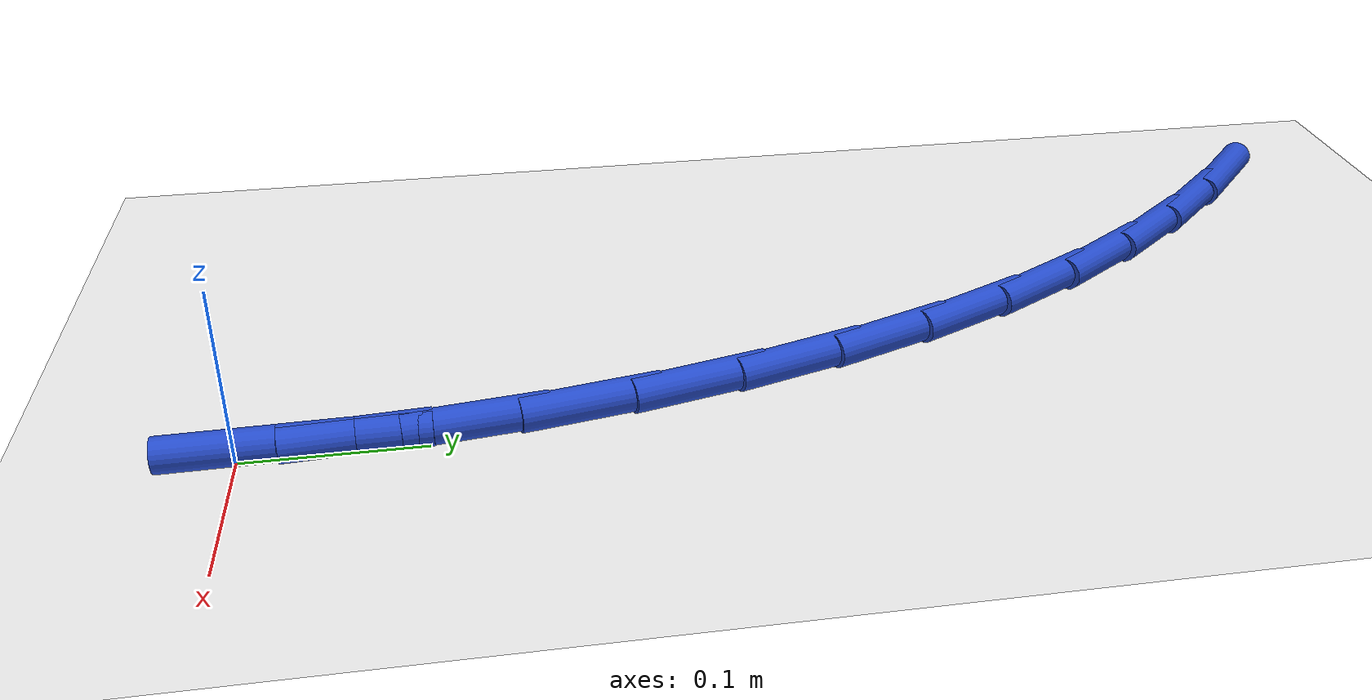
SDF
<sdf version="1.6">
 <world name="default">
  <model name="ground_plane">
   <static>1</static>
   <link name="link">
    <collision name="collision">
     <geometry><plane><normal>0 0 1</normal><size>100 100</size></plane></geometry>
     <surface><friction><ode><mu>100</mu><mu2>50</mu2></ode></friction></surface>
    </collision>
    <visual name="visual">
     <cast_shadows>0</cast_shadows>
     <geometry><plane><normal>0 0 1</normal><size>100 100</size></plane></geometry>
     <material>
      <script><uri>file://media/materials/scripts/gazebo.material</uri><name>Gazebo/WhiteGlow</name></script>
     </material>
    </visual>
   </link>
  </model>
  <model name="line">
   <link name="link_1">
    <pose>-0.001391001020907213 0.06254942778486844 0.01 0 1.57 -1.4908306305741112</pose>
    <collision name="collision">
     <geometry><cylinder><radius>0.01</radius><length>0.08</length></cylinder></geometry>
    </collision>
    <visual name="visual">
     <material>
      <script><name>Gazebo/Blue</name><uri>file://media/materials/scripts/gazebo.material</uri></script>
     </material>
     <geometry><cylinder><radius>0.01</radius><length>0.08</length></cylinder></geometry>
    </visual>
   </link>
   <link name="link_2">
    <pose>-0.006388080808135755 0.1249064656518266 0.01 0 1.57 -1.4316989416057089</pose>
    <collision name="collision">
     <geometry><cylinder><radius>0.01</radius><length>0.08</length></cylinder></geometry>
    </collision>
    <visual name="visual">
     <material>
      <script><name>Gazebo/Blue</name><uri>file://media/materials/scripts/gazebo.material</uri></script>
     </material>
     <geometry><cylinder><radius>0.01</radius><length>0.08</length></cylinder></geometry>
    </visual>
   </link>
   <link name="link_3">
    <pose>-0.015036185880049104 0.18667799525161344 0.01 0 1.57 -1.3704685711165452</pose>
    <collision name="collision">
     <geometry><cylinder><radius>0.01</radius><length>0.08</length></cylinder></geometry>
    </collision>
    <visual name="visual">
     <material>
      <script><name>Gazebo/Blue</name><uri>file://media/materials/scripts/gazebo.material</uri></script>
     </material>
     <geometry><cylinder><radius>0.01</radius><length>0.08</length></cylinder></geometry>
    </visual>
   </link>
   <link name="link_4">
    <pose>-0.027380262755010727 0.2474708982349676 0.01 0 1.57 -1.3064370665634912</pose>
    <collision name="collision">
     <geometry><cylinder><radius>0.01</radius><length>0.08</length></cylinder></geometry>
    </collision>
    <visual name="visual">
     <material>
      <script><name>Gazebo/Blue</name><uri>file://media/materials/scripts/gazebo.material</uri></script>
     </material>
     <geometry><cylinder><radius>0.01</radius><length>0.08</length></cylinder></geometry>
    </visual>
   </link>
   <link name="link_5">
    <pose>-0.04346525795138412 0.3068920562526279 0.01 0 1.57 -1.2389015030759278</pose>
    <collision name="collision">
     <geometry><cylinder><radius>0.01</radius><length>0.08</length></cylinder></geometry>
    </collision>
    <visual name="visual">
     <material>
      <script><name>Gazebo/Blue</name><uri>file://media/materials/scripts/gazebo.material</uri></script>
     </material>
     <geometry><cylinder><radius>0.01</radius><length>0.08</length></cylinder></geometry>
    </visual>
   </link>
   <link name="link_6">
    <pose>-0.06333611798753269 0.36454835095533283 0.01 0 1.57 -1.1671735737231936</pose>
    <collision name="collision">
     <geometry><cylinder><radius>0.01</radius><length>0.08</length></cylinder></geometry>
    </collision>
    <visual name="visual">
     <material>
      <script><name>Gazebo/Blue</name><uri>file://media/materials/scripts/gazebo.material</uri></script>
     </material>
     <geometry><cylinder><radius>0.01</radius><length>0.08</length></cylinder></geometry>
    </visual>
   </link>
   <link name="link_7">
    <pose>-0.08703778938181994 0.4200466639938213 0.01 0 1.57 -1.0906100683230515</pose>
    <collision name="collision">
     <geometry><cylinder><radius>0.01</radius><length>0.08</length></cylinder></geometry>
    </collision>
    <visual name="visual">
     <material>
      <script><name>Gazebo/Blue</name><uri>file://media/materials/scripts/gazebo.material</uri></script>
     </material>
     <geometry><cylinder><radius>0.01</radius><length>0.08</length></cylinder></geometry>
    </visual>
   </link>
   <link name="link_8">
    <pose>-0.11461521865260935 0.47299387701883194 0.01 0 1.57 -1.008663314355127</pose>
    <collision name="collision">
     <geometry><cylinder><radius>0.01</radius><length>0.08</length></cylinder></geometry>
    </collision>
    <visual name="visual">
     <material>
      <script><name>Gazebo/Blue</name><uri>file://media/materials/scripts/gazebo.material</uri></script>
     </material>
     <geometry><cylinder><radius>0.01</radius><length>0.08</length></cylinder></geometry>
    </visual>
   </link>
   <link name="link_9">
    <pose>-0.1461133523182644 0.5229968716811035 0.01 0 1.57 -0.9214837530365996</pose>
    <collision name="collision">
     <geometry><cylinder><radius>0.01</radius><length>0.08</length></cylinder></geometry>
    </collision>
    <visual name="visual">
     <material>
      <script><name>Gazebo/Blue</name><uri>file://media/materials/scripts/gazebo.material</uri></script>
     </material>
     <geometry><cylinder><radius>0.01</radius><length>0.08</length></cylinder></geometry>
    </visual>
   </link>
   <link name="link_10">
    <pose>-0.18156015954962906 0.569691458445462 0.01 0 1.57 -0.8363008431906535</pose>
    <collision name="collision">
     <geometry><cylinder><radius>0.01</radius><length>0.08</length></cylinder></geometry>
    </collision>
    <visual name="visual">
     <material>
      <script><name>Gazebo/Blue</name><uri>file://media/materials/scripts/gazebo.material</uri></script>
     </material>
     <geometry><cylinder><radius>0.01</radius><length>0.08</length></cylinder></geometry>
    </visual>
   </link>
   <link name="link_11">
    <pose>-0.22075806224359132 0.613097772545287 0.01 0 1.57 -0.7591365242058805</pose>
    <collision name="collision">
     <geometry><cylinder><radius>0.01</radius><length>0.08</length></cylinder></geometry>
    </collision>
    <visual name="visual">
     <material>
      <script><name>Gazebo/Blue</name><uri>file://media/materials/scripts/gazebo.material</uri></script>
     </material>
     <geometry><cylinder><radius>0.01</radius><length>0.08</length></cylinder></geometry>
    </visual>
   </link>
   <link name="link_12">
    <pose>-0.2633493599769999 0.6535087921196187 0.01 0 1.57 -0.6907781222472708</pose>
    <collision name="collision">
     <geometry><cylinder><radius>0.01</radius><length>0.08</length></cylinder></geometry>
    </collision>
    <visual name="visual">
     <material>
      <script><name>Gazebo/Blue</name><uri>file://media/materials/scripts/gazebo.material</uri></script>
     </material>
     <geometry><cylinder><radius>0.01</radius><length>0.08</length></cylinder></geometry>
    </visual>
   </link>
   <link name="link_110">
    <pose>-1.734723475976807e-17 1.8041124150158794e-16 0.01 0 1.57 -1.5486639944516896</pose>
    <collision name="collision">
     <geometry><cylinder><radius>0.01</radius><length>0.08</length></cylinder></geometry>
    </collision>
    <visual name="visual">
     <material>
      <script><name>Gazebo/Blue</name><uri>file://media/materials/scripts/gazebo.material</uri></script>
     </material>
     <geometry><cylinder><radius>0.01</radius><length>0.08</length></cylinder></geometry>
    </visual>
   </link>
   <link name="link_111">
    <pose>-0.001385065048048445 0.06257085180652035 0.01 0 1.57 -1.5486639944516896</pose>
    <collision name="collision">
     <geometry><cylinder><radius>0.01</radius><length>0.08</length></cylinder></geometry>
    </collision>
    <visual name="visual">
     <material>
      <script><name>Gazebo/Blue</name><uri>file://media/materials/scripts/gazebo.material</uri></script>
     </material>
     <geometry><cylinder><radius>0.01</radius><length>0.08</length></cylinder></geometry>
    </visual>
   </link>
  </model>
 </world>
</sdf>
